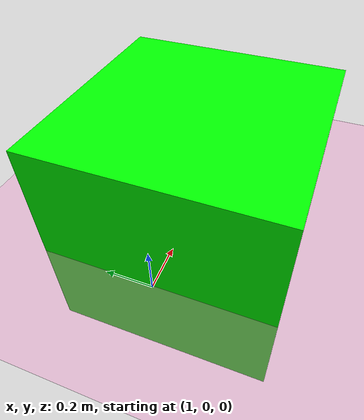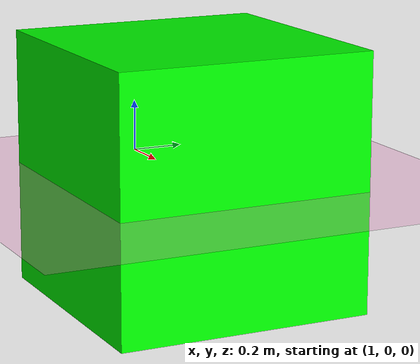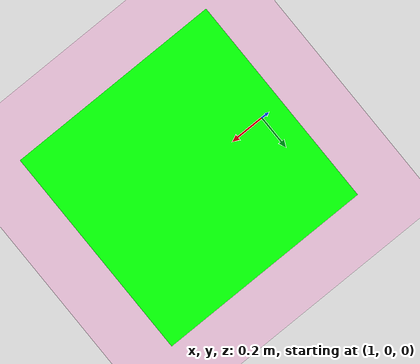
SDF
<?xml version="1.0" ?>
<sdf version="1.8">

  <world name="Moving_robot">

    <!-- Добавлен синий цвет окружения через ambient и background -->
    <scene>
      <ambient>0.1 0.1 0.5 1</ambient>
      <background>0.2 0.2 0.8 1</background>
      <shadows>true</shadows>
    </scene>

    <physics name="1ms" type="ignored">
      <max_step_size>0.02</max_step_size>
      <real_time_factor>1.0</real_time_factor>
    </physics>

    <plugin filename="gz-sim-physics-system" name="gz::sim::systems::Physics"/>
    <plugin filename="gz-sim-user-commands-system" name="gz::sim::systems::UserCommands"/>
    <plugin filename="gz-sim-scene-broadcaster-system" name="gz::sim::systems::SceneBroadcaster"/>
    <plugin filename="gz-sim-sensors-system" name="gz::sim::systems::Sensors"><render_engine>ogre2</render_engine></plugin>
    <plugin filename="gz-sim-contact-system" name="gz::sim::systems::Contact"></plugin>
    <plugin filename="gz-sim-imu-system" name="gz::sim::systems::Imu"></plugin>
    <plugin filename="gz-sim-navsat-system" name="gz::sim::systems::NavSat"></plugin>

    <light type="directional" name="sun">
      <cast_shadows>true</cast_shadows>
      <pose>0 0 10 0 0 0</pose>
      <diffuse>0.8 0.8 0.8 1</diffuse>
      <specular>0.2 0.2 0.2 1</specular>
      <attenuation>
        <range>1000</range>
        <constant>0.9</constant>
        <linear>0.01</linear>
        <quadratic>0.001</quadratic>
      </attenuation>
      <direction>-0.5 0.1 -0.9</direction>
    </light>

    <!-- Плоскость изменена на розовый цвет -->
    <model name="ground_plane">
      <static>true</static>
      <link name="link">
        <collision name="collision">
          <geometry>
            <plane>
              <normal>0 0 1</normal>
            </plane>
          </geometry>
        </collision>
        <visual name="visual">
          <geometry>
            <plane>
              <normal>0 0 1</normal>
              <size>100 100</size>
            </plane>
          </geometry>
          <material>
            <ambient>1 0.5 0.8 1</ambient>  <!-- Розовый -->
            <diffuse>1 0.5 0.8 1</diffuse>    <!-- Розовый -->
            <specular>0.1 0.1 0.1 1</specular>
          </material>
        </visual>
      </link>
    </model>

    <model name="green_cube">
      <pose>1.5 0 0.025 0 0 0</pose>
      <link name="cube_link">
        <inertial>
          <mass>0.2</mass>
          <inertia>
            <ixx>1e-4</ixx>
            <ixy>0</ixy>
            <ixz>0</ixz>
            <iyy>1e-4</iyy>
            <iyz>0</iyz>
            <izz>1e-4</izz>
          </inertia>
        </inertial>
        <visual name="visual">
          <geometry>
            <box>
              <size>0.99 0.99 0.99</size>
            </box>
          </geometry>
          <material>
            <ambient>0 1 0 1</ambient>
            <diffuse>0 1 0 1</diffuse>
            <specular>0 1 0 1</specular>
          </material>
        </visual>
        <collision name="collision">
          <geometry>
            <box>
              <size>0.99 0.99 0.99</size>
            </box>
          </geometry>
        </collision>
      </link>
    </model>
  </world>
</sdf>
